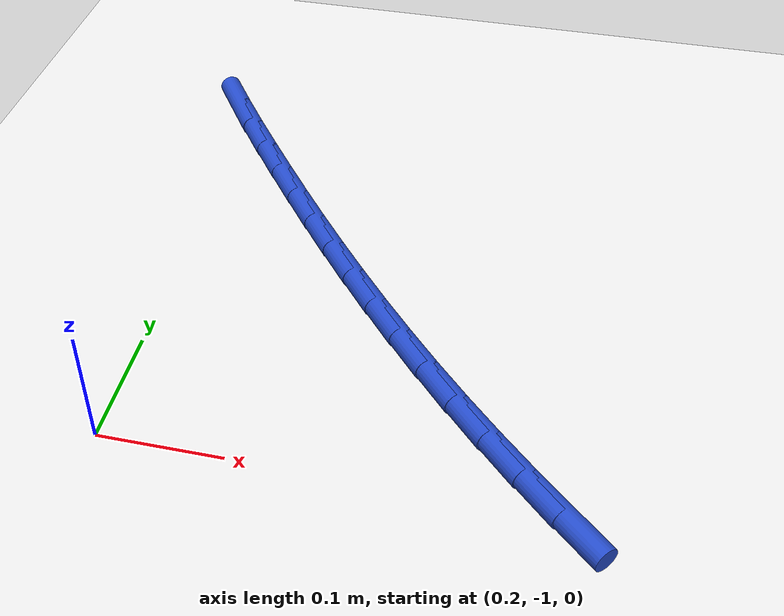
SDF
<sdf version="1.6">
 <world name="default">
  <model name="ground_plane">
   <static>1</static>
   <link name="link">
    <collision name="collision">
     <geometry><plane><normal>0 0 1</normal><size>100 100</size></plane></geometry>
     <surface><friction><ode><mu>100</mu><mu2>50</mu2></ode></friction></surface>
    </collision>
    <visual name="visual">
     <cast_shadows>0</cast_shadows>
     <geometry><plane><normal>0 0 1</normal><size>100 100</size></plane></geometry>
     <material>
      <script><uri>file://media/materials/scripts/gazebo.material</uri><name>Gazebo/WhiteGlow</name></script>
     </material>
    </visual>
   </link>
  </model>
  <model name="line">
   <link name="link_151">
    <pose>0.5449817052525421 -1.0061598982045226 0.01 0 1.57 -0.7523577176120403</pose>
    <collision name="collision">
     <geometry><cylinder><radius>0.01</radius><length>0.08</length></cylinder></geometry>
    </collision>
    <visual name="visual">
     <material>
      <script><name>Gazebo/Blue</name><uri>file://media/materials/scripts/gazebo.material</uri></script>
     </material>
     <geometry><cylinder><radius>0.01</radius><length>0.08</length></cylinder></geometry>
    </visual>
   </link>
   <link name="link_152">
    <pose>0.514875978488057 -0.9779806345775442 0.01 0 1.57 -0.7772621070117969</pose>
    <collision name="collision">
     <geometry><cylinder><radius>0.01</radius><length>0.08</length></cylinder></geometry>
    </collision>
    <visual name="visual">
     <material>
      <script><name>Gazebo/Blue</name><uri>file://media/materials/scripts/gazebo.material</uri></script>
     </material>
     <geometry><cylinder><radius>0.01</radius><length>0.08</length></cylinder></geometry>
    </visual>
   </link>
   <link name="link_153">
    <pose>0.48571528562938326 -0.9492906286519466 0.01 0 1.57 -0.8010288115308034</pose>
    <collision name="collision">
     <geometry><cylinder><radius>0.01</radius><length>0.08</length></cylinder></geometry>
    </collision>
    <visual name="visual">
     <material>
      <script><name>Gazebo/Blue</name><uri>file://media/materials/scripts/gazebo.material</uri></script>
     </material>
     <geometry><cylinder><radius>0.01</radius><length>0.08</length></cylinder></geometry>
    </visual>
   </link>
   <link name="link_154">
    <pose>0.45742698342407084 -0.9201038809960678 0.01 0 1.57 -0.8235358671139119</pose>
    <collision name="collision">
     <geometry><cylinder><radius>0.01</radius><length>0.08</length></cylinder></geometry>
    </collision>
    <visual name="visual">
     <material>
      <script><name>Gazebo/Blue</name><uri>file://media/materials/scripts/gazebo.material</uri></script>
     </material>
     <geometry><cylinder><radius>0.01</radius><length>0.08</length></cylinder></geometry>
    </visual>
   </link>
   <link name="link_155">
    <pose>0.4299384286196713 -0.8904343921782486 0.01 0 1.57 -0.8446748202095093</pose>
    <collision name="collision">
     <geometry><cylinder><radius>0.01</radius><length>0.08</length></cylinder></geometry>
    </collision>
    <visual name="visual">
     <material>
      <script><name>Gazebo/Blue</name><uri>file://media/materials/scripts/gazebo.material</uri></script>
     </material>
     <geometry><cylinder><radius>0.01</radius><length>0.08</length></cylinder></geometry>
    </visual>
   </link>
   <link name="link_156">
    <pose>0.4031769779637345 -0.8602961627668276 0.01 0 1.57 -0.8643515619185143</pose>
    <collision name="collision">
     <geometry><cylinder><radius>0.01</radius><length>0.08</length></cylinder></geometry>
    </collision>
    <visual name="visual">
     <material>
      <script><name>Gazebo/Blue</name><uri>file://media/materials/scripts/gazebo.material</uri></script>
     </material>
     <geometry><cylinder><radius>0.01</radius><length>0.08</length></cylinder></geometry>
    </visual>
   </link>
   <link name="link_157">
    <pose>0.37706998820381055 -0.8297031933301439 0.01 0 1.57 -0.8824866778862603</pose>
    <collision name="collision">
     <geometry><cylinder><radius>0.01</radius><length>0.08</length></cylinder></geometry>
    </collision>
    <visual name="visual">
     <material>
      <script><name>Gazebo/Blue</name><uri>file://media/materials/scripts/gazebo.material</uri></script>
     </material>
     <geometry><cylinder><radius>0.01</radius><length>0.08</length></cylinder></geometry>
    </visual>
   </link>
   <link name="link_158">
    <pose>0.3515448160874499 -0.7986694844365365 0.01 0 1.57 -0.8990153699518708</pose>
    <collision name="collision">
     <geometry><cylinder><radius>0.01</radius><length>0.08</length></cylinder></geometry>
    </collision>
    <visual name="visual">
     <material>
      <script><name>Gazebo/Blue</name><uri>file://media/materials/scripts/gazebo.material</uri></script>
     </material>
     <geometry><cylinder><radius>0.01</radius><length>0.08</length></cylinder></geometry>
    </visual>
   </link>
   <link name="link_159">
    <pose>0.32652881836220266 -0.767209036654344 0.01 0 1.57 -0.9138870234207137</pose>
    <collision name="collision">
     <geometry><cylinder><radius>0.01</radius><length>0.08</length></cylinder></geometry>
    </collision>
    <visual name="visual">
     <material>
      <script><name>Gazebo/Blue</name><uri>file://media/materials/scripts/gazebo.material</uri></script>
     </material>
     <geometry><cylinder><radius>0.01</radius><length>0.08</length></cylinder></geometry>
    </visual>
   </link>
   <link name="link_160">
    <pose>0.30194935177562 -0.7353358505519071 0.01 0 1.57 -0.9270645026137269</pose>
    <collision name="collision">
     <geometry><cylinder><radius>0.01</radius><length>0.08</length></cylinder></geometry>
    </collision>
    <visual name="visual">
     <material>
      <script><name>Gazebo/Blue</name><uri>file://media/materials/scripts/gazebo.material</uri></script>
     </material>
     <geometry><cylinder><radius>0.01</radius><length>0.08</length></cylinder></geometry>
    </visual>
   </link>
   <link name="link_161">
    <pose>0.2777337730752518 -0.703063926697564 0.01 0 1.57 -0.9385232580902676</pose>
    <collision name="collision">
     <geometry><cylinder><radius>0.01</radius><length>0.08</length></cylinder></geometry>
    </collision>
    <visual name="visual">
     <material>
      <script><name>Gazebo/Blue</name><uri>file://media/materials/scripts/gazebo.material</uri></script>
     </material>
     <geometry><cylinder><radius>0.01</radius><length>0.08</length></cylinder></geometry>
    </visual>
   </link>
   <link name="link_162">
    <pose>0.25380943900864855 -0.6704072656596539 0.01 0 1.57 -0.948255028928261</pose>
    <collision name="collision">
     <geometry><cylinder><radius>0.01</radius><length>0.08</length></cylinder></geometry>
    </collision>
    <visual name="visual">
     <material>
      <script><name>Gazebo/Blue</name><uri>file://media/materials/scripts/gazebo.material</uri></script>
     </material>
     <geometry><cylinder><radius>0.01</radius><length>0.08</length></cylinder></geometry>
    </visual>
   </link>
   <link name="link_163">
    <pose>0.23010391943632383 -0.6373798368459042 0.01 0 1.57 -0.9579479357666556</pose>
    <collision name="collision">
     <geometry><cylinder><radius>0.01</radius><length>0.08</length></cylinder></geometry>
    </collision>
    <visual name="visual">
     <material>
      <script><name>Gazebo/Blue</name><uri>file://media/materials/scripts/gazebo.material</uri></script>
     </material>
     <geometry><cylinder><radius>0.01</radius><length>0.08</length></cylinder></geometry>
    </visual>
   </link>
   <link name="link_164">
    <pose>0.20662135569666587 -0.6039844136575317 0.01 0 1.57 -0.971806741558633</pose>
    <collision name="collision">
     <geometry><cylinder><radius>0.01</radius><length>0.08</length></cylinder></geometry>
    </collision>
    <visual name="visual">
     <material>
      <script><name>Gazebo/Blue</name><uri>file://media/materials/scripts/gazebo.material</uri></script>
     </material>
     <geometry><cylinder><radius>0.01</radius><length>0.08</length></cylinder></geometry>
    </visual>
   </link>
   <link name="link_165">
    <pose>0.1835555672590133 -0.570196035440622 0.01 0 1.57 -0.9905370250531728</pose>
    <collision name="collision">
     <geometry><cylinder><radius>0.01</radius><length>0.08</length></cylinder></geometry>
    </collision>
    <visual name="visual">
     <material>
      <script><name>Gazebo/Blue</name><uri>file://media/materials/scripts/gazebo.material</uri></script>
     </material>
     <geometry><cylinder><radius>0.01</radius><length>0.08</length></cylinder></geometry>
    </visual>
   </link>
  </model>
 </world>
</sdf>
